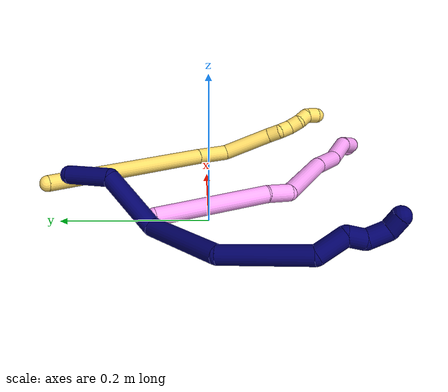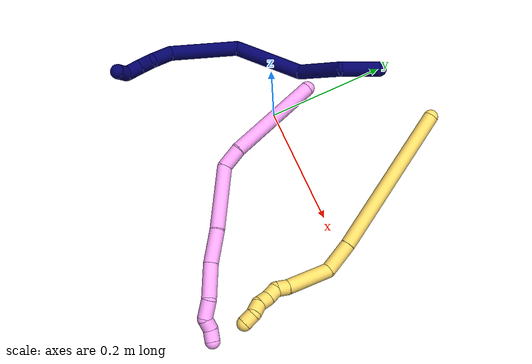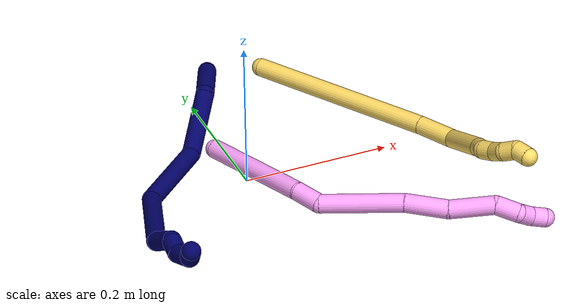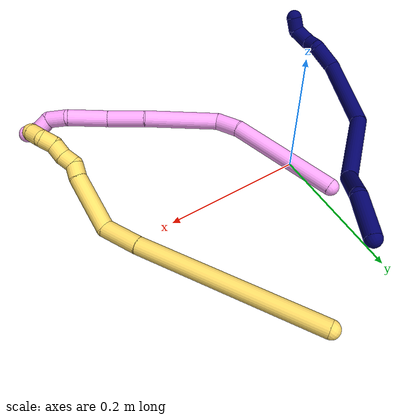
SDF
<sdf version="1.7">
 <world name="default">
  <model name="photoneo_s_sensor">
   <static>1</static>
   <pose>0 0 2 1.57079 1.57079 3.14159</pose>
   <link name="link">
    <inertial><mass>0.1</mass></inertial>
    <sensor name="sensor" type="depth">
     <update_rate>30</update_rate>
     <camera>
      <horizontal_fov>1.22</horizontal_fov>
      <image><width>1920</width><height>1200</height><format>B8G8R8</format></image>
      <clip><near>0.1</near><far>4</far></clip>
      <depth_camera><output>points</output></depth_camera>
     </camera>
     <plugin name="camera_plugin" filename="libgazebo_ros_depth_camera.so">
      <baseline>0.2</baseline>
      <alwaysOn>1</alwaysOn>
      <updateRate>0.0</updateRate>
      <cameraName>camera_ir</cameraName>
      <imageTopicName>/camera/color/image_raw</imageTopicName>
      <cameraInfoTopicName>/camera/color/camera_info</cameraInfoTopicName>
      <depthImageTopicName>/camera/depth/image_raw</depthImageTopicName>
      <depthImageCameraInfoTopicName>/camera/depth/camera_info</depthImageCameraInfoTopicName>
      <pointCloudTopicName>/camera/depth/points</pointCloudTopicName>
      <frameName>fr_optical</frameName>
      <pointCloudCutoff>0.1</pointCloudCutoff>
      <pointCloudCutoffMax>2.0</pointCloudCutoffMax>
      <distortionK1>0</distortionK1>
      <distortionK2>0</distortionK2>
      <distortionK3>0</distortionK3>
      <distortionT1>0</distortionT1>
      <distortionT2>0</distortionT2>
      <CxPrime>0</CxPrime>
      <Cx>0</Cx>
      <Cy>0</Cy>
      <focalLength>0</focalLength>
      <hackBaseline>0</hackBaseline>
     </plugin>
    </sensor>
   </link>
  </model>
  <model name="bin">
   <static>1</static>
   <link name="bottom">
    <collision name="collision-bottom">
     <pose>0 0 -0.01 0 -0 0</pose>
     <geometry><box><size>0.8 0.6 0.02</size></box></geometry>
     <surface>
      <friction><ode><mu>100</mu><mu2>100</mu2></ode></friction>
      <contact><collide_bitmask>65535</collide_bitmask></contact>
     </surface>
    </collision>
   </link>
   <link name="west_wall">
    <collision name="collision-west_wall">
     <pose>-0.41 0 0.1 0 -0 0</pose>
     <geometry><box><size>0.02 0.6 0.2</size></box></geometry>
     <surface>
      <friction><ode><mu>100</mu><mu2>100</mu2></ode></friction>
      <contact><collide_bitmask>65535</collide_bitmask></contact>
     </surface>
    </collision>
   </link>
   <link name="east_wall">
    <collision name="collision-east_wall">
     <pose>0.41 0 0.1 0 -0 0</pose>
     <geometry><box><size>0.02 0.6 0.2</size></box></geometry>
     <surface>
      <friction><ode><mu>100</mu><mu2>100</mu2></ode></friction>
      <contact><collide_bitmask>65535</collide_bitmask></contact>
     </surface>
    </collision>
   </link>
   <link name="south_wall">
    <collision name="collision-south_wall">
     <pose>0 -0.31 0.1 0 -0 0</pose>
     <geometry><box><size>0.8 0.02 0.2</size></box></geometry>
     <surface>
      <friction><ode><mu>100</mu><mu2>100</mu2></ode></friction>
      <contact><collide_bitmask>65535</collide_bitmask></contact>
     </surface>
    </collision>
   </link>
   <link name="north_wall">
    <collision name="collision-north_wall">
     <pose>0 0.31 0.1 0 -0 0</pose>
     <geometry><box><size>0.8 0.02 0.2</size></box></geometry>
     <surface>
      <friction><ode><mu>100</mu><mu2>100</mu2></ode></friction>
      <contact><collide_bitmask>65535</collide_bitmask></contact>
     </surface>
    </collision>
   </link>
  </model>
  <model name="4">
   <static>0</static>
   <link name="4">
    <collision name="collision-cylinder-e_1_1_4">
     <pose>0.076111 0.023106 -0.017977 -2.23198 1.2036 -1.90411</pose>
     <geometry><cylinder><radius>0.0125</radius><length>0.163094</length></cylinder></geometry>
     <surface>
      <friction><ode><mu>1.16</mu><mu2>1.16</mu2><slip1>0</slip1><slip2>0</slip2></ode></friction>
      <contact><ode><kp>1e+06</kp><kd>1</kd><max_vel>0</max_vel><min_depth>0.001</min_depth></ode></contact>
     </surface>
    </collision>
    <visual name="visual-cylinder-e_1_1_4">
     <pose>0.076111 0.023106 -0.017977 -2.23198 1.2036 -1.90411</pose>
     <geometry><cylinder><radius>0.0125</radius><length>0.163094</length></cylinder></geometry>
     <material><ambient>1 0.65098 0.996078 1</ambient></material>
    </visual>
    <collision name="collision-cylinder-e_2_4_5">
     <pose>0.168482 0.055141 -0.038674 -1.86653 1.0497 -1.32697</pose>
     <geometry><cylinder><radius>0.0125</radius><length>0.037498</length></cylinder></geometry>
     <surface>
      <friction><ode><mu>1.16</mu><mu2>1.16</mu2><slip1>0</slip1><slip2>0</slip2></ode></friction>
      <contact><ode><kp>1e+06</kp><kd>1</kd><max_vel>0</max_vel><min_depth>0.001</min_depth></ode></contact>
     </surface>
    </collision>
    <visual name="visual-cylinder-e_2_4_5">
     <pose>0.168482 0.055141 -0.038674 -1.86653 1.0497 -1.32697</pose>
     <geometry><cylinder><radius>0.0125</radius><length>0.037498</length></cylinder></geometry>
     <material><ambient>1 0.65098 0.996078 1</ambient></material>
    </visual>
    <collision name="collision-cylinder-e_3_5_6">
     <pose>0.228763 0.086405 -0.01652 -0.731683 0.921288 -0.375731</pose>
     <geometry><cylinder><radius>0.0125</radius><length>0.110552</length></cylinder></geometry>
     <surface>
      <friction><ode><mu>1.16</mu><mu2>1.16</mu2><slip1>0</slip1><slip2>0</slip2></ode></friction>
      <contact><ode><kp>1e+06</kp><kd>1</kd><max_vel>0</max_vel><min_depth>0.001</min_depth></ode></contact>
     </surface>
    </collision>
    <visual name="visual-cylinder-e_3_5_6">
     <pose>0.228763 0.086405 -0.01652 -0.731683 0.921288 -0.375731</pose>
     <geometry><cylinder><radius>0.0125</radius><length>0.110552</length></cylinder></geometry>
     <material><ambient>1 0.65098 0.996078 1</ambient></material>
    </visual>
    <collision name="collision-cylinder-e_4_6_7">
     <pose>0.295157 0.12368 0.018154 -0.99023 0.896921 -0.508387</pose>
     <geometry><cylinder><radius>0.0125</radius><length>0.057262</length></cylinder></geometry>
     <surface>
      <friction><ode><mu>1.16</mu><mu2>1.16</mu2><slip1>0</slip1><slip2>0</slip2></ode></friction>
      <contact><ode><kp>1e+06</kp><kd>1</kd><max_vel>0</max_vel><min_depth>0.001</min_depth></ode></contact>
     </surface>
    </collision>
    <visual name="visual-cylinder-e_4_6_7">
     <pose>0.295157 0.12368 0.018154 -0.99023 0.896921 -0.508387</pose>
     <geometry><cylinder><radius>0.0125</radius><length>0.057262</length></cylinder></geometry>
     <material><ambient>1 0.65098 0.996078 1</ambient></material>
    </visual>
    <collision name="collision-cylinder-e_5_7_8">
     <pose>0.340907 0.149239 0.043586 -0.596738 0.890948 -0.291616</pose>
     <geometry><cylinder><radius>0.0125</radius><length>0.060124</length></cylinder></geometry>
     <surface>
      <friction><ode><mu>1.16</mu><mu2>1.16</mu2><slip1>0</slip1><slip2>0</slip2></ode></friction>
      <contact><ode><kp>1e+06</kp><kd>1</kd><max_vel>0</max_vel><min_depth>0.001</min_depth></ode></contact>
     </surface>
    </collision>
    <visual name="visual-cylinder-e_5_7_8">
     <pose>0.340907 0.149239 0.043586 -0.596738 0.890948 -0.291616</pose>
     <geometry><cylinder><radius>0.0125</radius><length>0.060124</length></cylinder></geometry>
     <material><ambient>1 0.65098 0.996078 1</ambient></material>
    </visual>
    <collision name="collision-cylinder-e_6_8_9">
     <pose>0.375247 0.170398 0.062882 -1.23631 0.776582 -0.566159</pose>
     <geometry><cylinder><radius>0.0125</radius><length>0.031281</length></cylinder></geometry>
     <surface>
      <friction><ode><mu>1.16</mu><mu2>1.16</mu2><slip1>0</slip1><slip2>0</slip2></ode></friction>
      <contact><ode><kp>1e+06</kp><kd>1</kd><max_vel>0</max_vel><min_depth>0.001</min_depth></ode></contact>
     </surface>
    </collision>
    <visual name="visual-cylinder-e_6_8_9">
     <pose>0.375247 0.170398 0.062882 -1.23631 0.776582 -0.566159</pose>
     <geometry><cylinder><radius>0.0125</radius><length>0.031281</length></cylinder></geometry>
     <material><ambient>1 0.65098 0.996078 1</ambient></material>
    </visual>
    <collision name="collision-cylinder-e_7_9_10">
     <pose>0.387159 0.188953 0.072543 -0.92843 0.094569 -0.047378</pose>
     <geometry><cylinder><radius>0.0125</radius><length>0.020114</length></cylinder></geometry>
     <surface>
      <friction><ode><mu>1.16</mu><mu2>1.16</mu2><slip1>0</slip1><slip2>0</slip2></ode></friction>
      <contact><ode><kp>1e+06</kp><kd>1</kd><max_vel>0</max_vel><min_depth>0.001</min_depth></ode></contact>
     </surface>
    </collision>
    <visual name="visual-cylinder-e_7_9_10">
     <pose>0.387159 0.188953 0.072543 -0.92843 0.094569 -0.047378</pose>
     <geometry><cylinder><radius>0.0125</radius><length>0.020114</length></cylinder></geometry>
     <material><ambient>1 0.65098 0.996078 1</ambient></material>
    </visual>
    <collision name="collision-cylinder-e_8_10_2">
     <pose>0.393216 0.203488 0.084213 -0.854757 0.533833 -0.247803</pose>
     <geometry><cylinder><radius>0.0125</radius><length>0.020075</length></cylinder></geometry>
     <surface>
      <friction><ode><mu>1.16</mu><mu2>1.16</mu2><slip1>0</slip1><slip2>0</slip2></ode></friction>
      <contact><ode><kp>1e+06</kp><kd>1</kd><max_vel>0</max_vel><min_depth>0.001</min_depth></ode></contact>
     </surface>
    </collision>
    <visual name="visual-cylinder-e_8_10_2">
     <pose>0.393216 0.203488 0.084213 -0.854757 0.533833 -0.247803</pose>
     <geometry><cylinder><radius>0.0125</radius><length>0.020075</length></cylinder></geometry>
     <material><ambient>1 0.65098 0.996078 1</ambient></material>
    </visual>
    <collision name="collision-sphere-2">
     <pose>0.398323 0.210007 0.089885 0 -0 0</pose>
     <geometry><sphere><radius>0.0125</radius></sphere></geometry>
     <surface>
      <friction><ode><mu>1.16</mu><mu2>1.16</mu2><slip1>0</slip1><slip2>0</slip2></ode></friction>
      <contact><ode><kp>1e+06</kp><kd>1</kd><max_vel>0</max_vel><min_depth>0.001</min_depth></ode></contact>
     </surface>
    </collision>
    <visual name="visual-sphere-2">
     <pose>0.398323 0.210007 0.089885 0 -0 0</pose>
     <geometry><sphere><radius>0.0125</radius></sphere></geometry>
     <material><ambient>1 0.65098 0.996078 1</ambient></material>
    </visual>
    <collision name="collision-sphere-10">
     <pose>0.388108 0.196969 0.078541 0 -0 0</pose>
     <geometry><sphere><radius>0.0125</radius></sphere></geometry>
     <surface>
      <friction><ode><mu>1.16</mu><mu2>1.16</mu2><slip1>0</slip1><slip2>0</slip2></ode></friction>
      <contact><ode><kp>1e+06</kp><kd>1</kd><max_vel>0</max_vel><min_depth>0.001</min_depth></ode></contact>
     </surface>
    </collision>
    <visual name="visual-sphere-10">
     <pose>0.388108 0.196969 0.078541 0 -0 0</pose>
     <geometry><sphere><radius>0.0125</radius></sphere></geometry>
     <material><ambient>1 0.65098 0.996078 1</ambient></material>
    </visual>
    <collision name="collision-sphere-9">
     <pose>0.386209 0.180936 0.066544 0 -0 0</pose>
     <geometry><sphere><radius>0.0125</radius></sphere></geometry>
     <surface>
      <friction><ode><mu>1.16</mu><mu2>1.16</mu2><slip1>0</slip1><slip2>0</slip2></ode></friction>
      <contact><ode><kp>1e+06</kp><kd>1</kd><max_vel>0</max_vel><min_depth>0.001</min_depth></ode></contact>
     </surface>
    </collision>
    <visual name="visual-sphere-9">
     <pose>0.386209 0.180936 0.066544 0 -0 0</pose>
     <geometry><sphere><radius>0.0125</radius></sphere></geometry>
     <material><ambient>1 0.65098 0.996078 1</ambient></material>
    </visual>
    <collision name="collision-sphere-4">
     <pose>0.152222 0.046212 -0.035953 0 -0 0</pose>
     <geometry><sphere><radius>0.0125</radius></sphere></geometry>
     <surface>
      <friction><ode><mu>1.16</mu><mu2>1.16</mu2><slip1>0</slip1><slip2>0</slip2></ode></friction>
      <contact><ode><kp>1e+06</kp><kd>1</kd><max_vel>0</max_vel><min_depth>0.001</min_depth></ode></contact>
     </surface>
    </collision>
    <visual name="visual-sphere-4">
     <pose>0.152222 0.046212 -0.035953 0 -0 0</pose>
     <geometry><sphere><radius>0.0125</radius></sphere></geometry>
     <material><ambient>1 0.65098 0.996078 1</ambient></material>
    </visual>
    <collision name="collision-sphere-1">
     <geometry><sphere><radius>0.0125</radius></sphere></geometry>
     <surface>
      <friction><ode><mu>1.16</mu><mu2>1.16</mu2><slip1>0</slip1><slip2>0</slip2></ode></friction>
      <contact><ode><kp>1e+06</kp><kd>1</kd><max_vel>0</max_vel><min_depth>0.001</min_depth></ode></contact>
     </surface>
    </collision>
    <visual name="visual-sphere-1">
     <geometry><sphere><radius>0.0125</radius></sphere></geometry>
     <material><ambient>1 0.65098 0.996078 1</ambient></material>
    </visual>
    <collision name="collision-sphere-8">
     <pose>0.364285 0.15986 0.059219 0 -0 0</pose>
     <geometry><sphere><radius>0.0125</radius></sphere></geometry>
     <surface>
      <friction><ode><mu>1.16</mu><mu2>1.16</mu2><slip1>0</slip1><slip2>0</slip2></ode></friction>
      <contact><ode><kp>1e+06</kp><kd>1</kd><max_vel>0</max_vel><min_depth>0.001</min_depth></ode></contact>
     </surface>
    </collision>
    <visual name="visual-sphere-8">
     <pose>0.364285 0.15986 0.059219 0 -0 0</pose>
     <geometry><sphere><radius>0.0125</radius></sphere></geometry>
     <material><ambient>1 0.65098 0.996078 1</ambient></material>
    </visual>
    <collision name="collision-sphere-5">
     <pose>0.184743 0.06407 -0.041394 0 -0 0</pose>
     <geometry><sphere><radius>0.0125</radius></sphere></geometry>
     <surface>
      <friction><ode><mu>1.16</mu><mu2>1.16</mu2><slip1>0</slip1><slip2>0</slip2></ode></friction>
      <contact><ode><kp>1e+06</kp><kd>1</kd><max_vel>0</max_vel><min_depth>0.001</min_depth></ode></contact>
     </surface>
    </collision>
    <visual name="visual-sphere-5">
     <pose>0.184743 0.06407 -0.041394 0 -0 0</pose>
     <geometry><sphere><radius>0.0125</radius></sphere></geometry>
     <material><ambient>1 0.65098 0.996078 1</ambient></material>
    </visual>
    <collision name="collision-sphere-6">
     <pose>0.272784 0.108741 0.008354 0 -0 0</pose>
     <geometry><sphere><radius>0.0125</radius></sphere></geometry>
     <surface>
      <friction><ode><mu>1.16</mu><mu2>1.16</mu2><slip1>0</slip1><slip2>0</slip2></ode></friction>
      <contact><ode><kp>1e+06</kp><kd>1</kd><max_vel>0</max_vel><min_depth>0.001</min_depth></ode></contact>
     </surface>
    </collision>
    <visual name="visual-sphere-6">
     <pose>0.272784 0.108741 0.008354 0 -0 0</pose>
     <geometry><sphere><radius>0.0125</radius></sphere></geometry>
     <material><ambient>1 0.65098 0.996078 1</ambient></material>
    </visual>
    <collision name="collision-sphere-7">
     <pose>0.317529 0.138619 0.027953 0 -0 0</pose>
     <geometry><sphere><radius>0.0125</radius></sphere></geometry>
     <surface>
      <friction><ode><mu>1.16</mu><mu2>1.16</mu2><slip1>0</slip1><slip2>0</slip2></ode></friction>
      <contact><ode><kp>1e+06</kp><kd>1</kd><max_vel>0</max_vel><min_depth>0.001</min_depth></ode></contact>
     </surface>
    </collision>
    <visual name="visual-sphere-7">
     <pose>0.317529 0.138619 0.027953 0 -0 0</pose>
     <geometry><sphere><radius>0.0125</radius></sphere></geometry>
     <material><ambient>1 0.65098 0.996078 1</ambient></material>
    </visual>
    <inertial>
     <pose>0.217677 0.089319 0.005137 0 -0 0</pose>
     <mass>0.5</mass>
     <inertia>
      <ixx>-8.3e-05</ixx>
      <ixy>0</ixy>
      <ixz>0</ixz>
      <iyy>0.000327</iyy>
      <iyz>0</iyz>
      <izz>-0.000643</izz>
     </inertia>
    </inertial>
   </link>
   <pose>-0.015966 0.071598 0.012489 -1.2813 -0.415428 -1.10571</pose>
  </model>
  <model name="5">
   <static>0</static>
   <link name="5">
    <collision name="collision-cylinder-e_1_1_4">
     <pose>0.0559 -0.11128 0.046953 1.17152 0.43347 0.290116</pose>
     <geometry><cylinder><radius>0.0125</radius><length>0.266177</length></cylinder></geometry>
     <surface>
      <friction><ode><mu>1.16</mu><mu2>1.16</mu2><slip1>0</slip1><slip2>0</slip2></ode></friction>
      <contact><ode><kp>1e+06</kp><kd>1</kd><max_vel>0</max_vel><min_depth>0.001</min_depth></ode></contact>
     </surface>
    </collision>
    <visual name="visual-cylinder-e_1_1_4">
     <pose>0.0559 -0.11128 0.046953 1.17152 0.43347 0.290116</pose>
     <geometry><cylinder><radius>0.0125</radius><length>0.266177</length></cylinder></geometry>
     <material><ambient>1 0.858824 0.4 1</ambient></material>
    </visual>
    <collision name="collision-cylinder-e_2_4_5">
     <pose>0.124491 -0.244626 0.101841 1.22559 0.496058 0.352411</pose>
     <geometry><cylinder><radius>0.0125</radius><length>0.053328</length></cylinder></geometry>
     <surface>
      <friction><ode><mu>1.16</mu><mu2>1.16</mu2><slip1>0</slip1><slip2>0</slip2></ode></friction>
      <contact><ode><kp>1e+06</kp><kd>1</kd><max_vel>0</max_vel><min_depth>0.001</min_depth></ode></contact>
     </surface>
    </collision>
    <visual name="visual-cylinder-e_2_4_5">
     <pose>0.124491 -0.244626 0.101841 1.22559 0.496058 0.352411</pose>
     <geometry><cylinder><radius>0.0125</radius><length>0.053328</length></cylinder></geometry>
     <material><ambient>1 0.858824 0.4 1</ambient></material>
    </visual>
    <collision name="collision-cylinder-e_3_5_6">
     <pose>0.155409 -0.300595 0.098327 1.89647 0.471114 0.645388</pose>
     <geometry><cylinder><radius>0.0125</radius><length>0.080316</length></cylinder></geometry>
     <surface>
      <friction><ode><mu>1.16</mu><mu2>1.16</mu2><slip1>0</slip1><slip2>0</slip2></ode></friction>
      <contact><ode><kp>1e+06</kp><kd>1</kd><max_vel>0</max_vel><min_depth>0.001</min_depth></ode></contact>
     </surface>
    </collision>
    <visual name="visual-cylinder-e_3_5_6">
     <pose>0.155409 -0.300595 0.098327 1.89647 0.471114 0.645388</pose>
     <geometry><cylinder><radius>0.0125</radius><length>0.080316</length></cylinder></geometry>
     <material><ambient>1 0.858824 0.4 1</ambient></material>
    </visual>
    <collision name="collision-cylinder-e_4_6_7">
     <pose>0.178676 -0.341838 0.082318 2.12671 0.527947 0.904956</pose>
     <geometry><cylinder><radius>0.0125</radius><length>0.020009</length></cylinder></geometry>
     <surface>
      <friction><ode><mu>1.16</mu><mu2>1.16</mu2><slip1>0</slip1><slip2>0</slip2></ode></friction>
      <contact><ode><kp>1e+06</kp><kd>1</kd><max_vel>0</max_vel><min_depth>0.001</min_depth></ode></contact>
     </surface>
    </collision>
    <visual name="visual-cylinder-e_4_6_7">
     <pose>0.178676 -0.341838 0.082318 2.12671 0.527947 0.904956</pose>
     <geometry><cylinder><radius>0.0125</radius><length>0.020009</length></cylinder></geometry>
     <material><ambient>1 0.858824 0.4 1</ambient></material>
    </visual>
    <collision name="collision-cylinder-e_5_7_8">
     <pose>0.187149 -0.358567 0.078731 1.46748 0.348894 0.315185</pose>
     <geometry><cylinder><radius>0.0125</radius><length>0.020088</length></cylinder></geometry>
     <surface>
      <friction><ode><mu>1.16</mu><mu2>1.16</mu2><slip1>0</slip1><slip2>0</slip2></ode></friction>
      <contact><ode><kp>1e+06</kp><kd>1</kd><max_vel>0</max_vel><min_depth>0.001</min_depth></ode></contact>
     </surface>
    </collision>
    <visual name="visual-cylinder-e_5_7_8">
     <pose>0.187149 -0.358567 0.078731 1.46748 0.348894 0.315185</pose>
     <geometry><cylinder><radius>0.0125</radius><length>0.020088</length></cylinder></geometry>
     <material><ambient>1 0.858824 0.4 1</ambient></material>
    </visual>
    <collision name="collision-cylinder-e_6_8_9">
     <pose>0.193526 -0.377348 0.077755 1.77544 0.297733 0.364511</pose>
     <geometry><cylinder><radius>0.0125</radius><length>0.020067</length></cylinder></geometry>
     <surface>
      <friction><ode><mu>1.16</mu><mu2>1.16</mu2><slip1>0</slip1><slip2>0</slip2></ode></friction>
      <contact><ode><kp>1e+06</kp><kd>1</kd><max_vel>0</max_vel><min_depth>0.001</min_depth></ode></contact>
     </surface>
    </collision>
    <visual name="visual-cylinder-e_6_8_9">
     <pose>0.193526 -0.377348 0.077755 1.77544 0.297733 0.364511</pose>
     <geometry><cylinder><radius>0.0125</radius><length>0.020067</length></cylinder></geometry>
     <material><ambient>1 0.858824 0.4 1</ambient></material>
    </visual>
    <collision name="collision-cylinder-e_7_9_10">
     <pose>0.196993 -0.396586 0.077503 1.40006 0.052326 0.044079</pose>
     <geometry><cylinder><radius>0.0125</radius><length>0.02001</length></cylinder></geometry>
     <surface>
      <friction><ode><mu>1.16</mu><mu2>1.16</mu2><slip1>0</slip1><slip2>0</slip2></ode></friction>
      <contact><ode><kp>1e+06</kp><kd>1</kd><max_vel>0</max_vel><min_depth>0.001</min_depth></ode></contact>
     </surface>
    </collision>
    <visual name="visual-cylinder-e_7_9_10">
     <pose>0.196993 -0.396586 0.077503 1.40006 0.052326 0.044079</pose>
     <geometry><cylinder><radius>0.0125</radius><length>0.02001</length></cylinder></geometry>
     <material><ambient>1 0.858824 0.4 1</ambient></material>
    </visual>
    <collision name="collision-cylinder-e_8_10_2">
     <pose>0.20342 -0.414101 0.081726 1.25266 0.631296 0.464036</pose>
     <geometry><cylinder><radius>0.0125</radius><length>0.020006</length></cylinder></geometry>
     <surface>
      <friction><ode><mu>1.16</mu><mu2>1.16</mu2><slip1>0</slip1><slip2>0</slip2></ode></friction>
      <contact><ode><kp>1e+06</kp><kd>1</kd><max_vel>0</max_vel><min_depth>0.001</min_depth></ode></contact>
     </surface>
    </collision>
    <visual name="visual-cylinder-e_8_10_2">
     <pose>0.20342 -0.414101 0.081726 1.25266 0.631296 0.464036</pose>
     <geometry><cylinder><radius>0.0125</radius><length>0.020006</length></cylinder></geometry>
     <material><ambient>1 0.858824 0.4 1</ambient></material>
    </visual>
    <collision name="collision-sphere-2">
     <pose>0.209323 -0.421771 0.084252 0 -0 0</pose>
     <geometry><sphere><radius>0.0125</radius></sphere></geometry>
     <surface>
      <friction><ode><mu>1.16</mu><mu2>1.16</mu2><slip1>0</slip1><slip2>0</slip2></ode></friction>
      <contact><ode><kp>1e+06</kp><kd>1</kd><max_vel>0</max_vel><min_depth>0.001</min_depth></ode></contact>
     </surface>
    </collision>
    <visual name="visual-sphere-2">
     <pose>0.209323 -0.421771 0.084252 0 -0 0</pose>
     <geometry><sphere><radius>0.0125</radius></sphere></geometry>
     <material><ambient>1 0.858824 0.4 1</ambient></material>
    </visual>
    <collision name="collision-sphere-10">
     <pose>0.197516 -0.406432 0.0792 0 -0 0</pose>
     <geometry><sphere><radius>0.0125</radius></sphere></geometry>
     <surface>
      <friction><ode><mu>1.16</mu><mu2>1.16</mu2><slip1>0</slip1><slip2>0</slip2></ode></friction>
      <contact><ode><kp>1e+06</kp><kd>1</kd><max_vel>0</max_vel><min_depth>0.001</min_depth></ode></contact>
     </surface>
    </collision>
    <visual name="visual-sphere-10">
     <pose>0.197516 -0.406432 0.0792 0 -0 0</pose>
     <geometry><sphere><radius>0.0125</radius></sphere></geometry>
     <material><ambient>1 0.858824 0.4 1</ambient></material>
    </visual>
    <collision name="collision-sphere-9">
     <pose>0.19647 -0.38674 0.075805 0 -0 0</pose>
     <geometry><sphere><radius>0.0125</radius></sphere></geometry>
     <surface>
      <friction><ode><mu>1.16</mu><mu2>1.16</mu2><slip1>0</slip1><slip2>0</slip2></ode></friction>
      <contact><ode><kp>1e+06</kp><kd>1</kd><max_vel>0</max_vel><min_depth>0.001</min_depth></ode></contact>
     </surface>
    </collision>
    <visual name="visual-sphere-9">
     <pose>0.19647 -0.38674 0.075805 0 -0 0</pose>
     <geometry><sphere><radius>0.0125</radius></sphere></geometry>
     <material><ambient>1 0.858824 0.4 1</ambient></material>
    </visual>
    <collision name="collision-sphere-4">
     <pose>0.1118 -0.222559 0.093906 0 -0 0</pose>
     <geometry><sphere><radius>0.0125</radius></sphere></geometry>
     <surface>
      <friction><ode><mu>1.16</mu><mu2>1.16</mu2><slip1>0</slip1><slip2>0</slip2></ode></friction>
      <contact><ode><kp>1e+06</kp><kd>1</kd><max_vel>0</max_vel><min_depth>0.001</min_depth></ode></contact>
     </surface>
    </collision>
    <visual name="visual-sphere-4">
     <pose>0.1118 -0.222559 0.093906 0 -0 0</pose>
     <geometry><sphere><radius>0.0125</radius></sphere></geometry>
     <material><ambient>1 0.858824 0.4 1</ambient></material>
    </visual>
    <collision name="collision-sphere-1">
     <geometry><sphere><radius>0.0125</radius></sphere></geometry>
     <surface>
      <friction><ode><mu>1.16</mu><mu2>1.16</mu2><slip1>0</slip1><slip2>0</slip2></ode></friction>
      <contact><ode><kp>1e+06</kp><kd>1</kd><max_vel>0</max_vel><min_depth>0.001</min_depth></ode></contact>
     </surface>
    </collision>
    <visual name="visual-sphere-1">
     <geometry><sphere><radius>0.0125</radius></sphere></geometry>
     <material><ambient>1 0.858824 0.4 1</ambient></material>
    </visual>
    <collision name="collision-sphere-8">
     <pose>0.190583 -0.367956 0.079704 0 -0 0</pose>
     <geometry><sphere><radius>0.0125</radius></sphere></geometry>
     <surface>
      <friction><ode><mu>1.16</mu><mu2>1.16</mu2><slip1>0</slip1><slip2>0</slip2></ode></friction>
      <contact><ode><kp>1e+06</kp><kd>1</kd><max_vel>0</max_vel><min_depth>0.001</min_depth></ode></contact>
     </surface>
    </collision>
    <visual name="visual-sphere-8">
     <pose>0.190583 -0.367956 0.079704 0 -0 0</pose>
     <geometry><sphere><radius>0.0125</radius></sphere></geometry>
     <material><ambient>1 0.858824 0.4 1</ambient></material>
    </visual>
    <collision name="collision-sphere-5">
     <pose>0.137182 -0.266692 0.109776 0 -0 0</pose>
     <geometry><sphere><radius>0.0125</radius></sphere></geometry>
     <surface>
      <friction><ode><mu>1.16</mu><mu2>1.16</mu2><slip1>0</slip1><slip2>0</slip2></ode></friction>
      <contact><ode><kp>1e+06</kp><kd>1</kd><max_vel>0</max_vel><min_depth>0.001</min_depth></ode></contact>
     </surface>
    </collision>
    <visual name="visual-sphere-5">
     <pose>0.137182 -0.266692 0.109776 0 -0 0</pose>
     <geometry><sphere><radius>0.0125</radius></sphere></geometry>
     <material><ambient>1 0.858824 0.4 1</ambient></material>
    </visual>
    <collision name="collision-sphere-6">
     <pose>0.173636 -0.334497 0.086878 0 -0 0</pose>
     <geometry><sphere><radius>0.0125</radius></sphere></geometry>
     <surface>
      <friction><ode><mu>1.16</mu><mu2>1.16</mu2><slip1>0</slip1><slip2>0</slip2></ode></friction>
      <contact><ode><kp>1e+06</kp><kd>1</kd><max_vel>0</max_vel><min_depth>0.001</min_depth></ode></contact>
     </surface>
    </collision>
    <visual name="visual-sphere-6">
     <pose>0.173636 -0.334497 0.086878 0 -0 0</pose>
     <geometry><sphere><radius>0.0125</radius></sphere></geometry>
     <material><ambient>1 0.858824 0.4 1</ambient></material>
    </visual>
    <collision name="collision-sphere-7">
     <pose>0.183716 -0.349178 0.077757 0 -0 0</pose>
     <geometry><sphere><radius>0.0125</radius></sphere></geometry>
     <surface>
      <friction><ode><mu>1.16</mu><mu2>1.16</mu2><slip1>0</slip1><slip2>0</slip2></ode></friction>
      <contact><ode><kp>1e+06</kp><kd>1</kd><max_vel>0</max_vel><min_depth>0.001</min_depth></ode></contact>
     </surface>
    </collision>
    <visual name="visual-sphere-7">
     <pose>0.183716 -0.349178 0.077757 0 -0 0</pose>
     <geometry><sphere><radius>0.0125</radius></sphere></geometry>
     <material><ambient>1 0.858824 0.4 1</ambient></material>
    </visual>
    <inertial>
     <pose>0.106459 -0.209286 0.067601 0 -0 0</pose>
     <mass>0.5</mass>
     <inertia>
      <ixx>0.001885</ixx>
      <ixy>0</ixy>
      <ixz>0</ixz>
      <iyy>0.001182</iyy>
      <iyz>0</iyz>
      <izz>0.000692</izz>
     </inertia>
    </inertial>
   </link>
   <pose>0.120999 0.240384 0.012726 -2.41812 0.609472 -2.05439</pose>
  </model>
  <model name="7">
   <static>0</static>
   <link name="7">
    <collision name="collision-cylinder-e_1_1_4">
     <pose>-0.008613 -0.001041 0.030577 0.034038 -0.274426 -0.0047</pose>
     <geometry><cylinder><radius>0.0125</radius><length>0.063568</length></cylinder></geometry>
     <surface>
      <friction><ode><mu>1.16</mu><mu2>1.16</mu2><slip1>0</slip1><slip2>0</slip2></ode></friction>
      <contact><ode><kp>1e+06</kp><kd>1</kd><max_vel>0</max_vel><min_depth>0.001</min_depth></ode></contact>
     </surface>
    </collision>
    <visual name="visual-cylinder-e_1_1_4">
     <pose>-0.008613 -0.001041 0.030577 0.034038 -0.274426 -0.0047</pose>
     <geometry><cylinder><radius>0.0125</radius><length>0.063568</length></cylinder></geometry>
     <material><ambient>0.003922 0 0.403922 1</ambient></material>
    </visual>
    <collision name="collision-cylinder-e_2_4_5">
     <pose>-0.045181 -0.024729 0.086782 0.723708 -0.685255 -0.268411</pose>
     <geometry><cylinder><radius>0.0125</radius><length>0.088343</length></cylinder></geometry>
     <surface>
      <friction><ode><mu>1.16</mu><mu2>1.16</mu2><slip1>0</slip1><slip2>0</slip2></ode></friction>
      <contact><ode><kp>1e+06</kp><kd>1</kd><max_vel>0</max_vel><min_depth>0.001</min_depth></ode></contact>
     </surface>
    </collision>
    <visual name="visual-cylinder-e_2_4_5">
     <pose>-0.045181 -0.024729 0.086782 0.723708 -0.685255 -0.268411</pose>
     <geometry><cylinder><radius>0.0125</radius><length>0.088343</length></cylinder></geometry>
     <material><ambient>0.003922 0 0.403922 1</ambient></material>
    </visual>
    <collision name="collision-cylinder-e_3_5_6">
     <pose>-0.109395 -0.041928 0.158694 -0.117144 -0.661196 0.040244</pose>
     <geometry><cylinder><radius>0.0125</radius><length>0.118096</length></cylinder></geometry>
     <surface>
      <friction><ode><mu>1.16</mu><mu2>1.16</mu2><slip1>0</slip1><slip2>0</slip2></ode></friction>
      <contact><ode><kp>1e+06</kp><kd>1</kd><max_vel>0</max_vel><min_depth>0.001</min_depth></ode></contact>
     </surface>
    </collision>
    <visual name="visual-cylinder-e_3_5_6">
     <pose>-0.109395 -0.041928 0.158694 -0.117144 -0.661196 0.040244</pose>
     <geometry><cylinder><radius>0.0125</radius><length>0.118096</length></cylinder></geometry>
     <material><ambient>0.003922 0 0.403922 1</ambient></material>
    </visual>
    <collision name="collision-cylinder-e_4_6_7">
     <pose>-0.154188 -0.038351 0.262602 0.032447 -0.146944 -0.002388</pose>
     <geometry><cylinder><radius>0.0125</radius><length>0.116562</length></cylinder></geometry>
     <surface>
      <friction><ode><mu>1.16</mu><mu2>1.16</mu2><slip1>0</slip1><slip2>0</slip2></ode></friction>
      <contact><ode><kp>1e+06</kp><kd>1</kd><max_vel>0</max_vel><min_depth>0.001</min_depth></ode></contact>
     </surface>
    </collision>
    <visual name="visual-cylinder-e_4_6_7">
     <pose>-0.154188 -0.038351 0.262602 0.032447 -0.146944 -0.002388</pose>
     <geometry><cylinder><radius>0.0125</radius><length>0.116562</length></cylinder></geometry>
     <material><ambient>0.003922 0 0.403922 1</ambient></material>
    </visual>
    <collision name="collision-cylinder-e_5_7_8">
     <pose>-0.153498 -0.037117 0.337895 -0.173911 0.474856 -0.042185</pose>
     <geometry><cylinder><radius>0.0125</radius><length>0.040346</length></cylinder></geometry>
     <surface>
      <friction><ode><mu>1.16</mu><mu2>1.16</mu2><slip1>0</slip1><slip2>0</slip2></ode></friction>
      <contact><ode><kp>1e+06</kp><kd>1</kd><max_vel>0</max_vel><min_depth>0.001</min_depth></ode></contact>
     </surface>
    </collision>
    <visual name="visual-cylinder-e_5_7_8">
     <pose>-0.153498 -0.037117 0.337895 -0.173911 0.474856 -0.042185</pose>
     <geometry><cylinder><radius>0.0125</radius><length>0.040346</length></cylinder></geometry>
     <material><ambient>0.003922 0 0.403922 1</ambient></material>
    </visual>
    <collision name="collision-cylinder-e_6_8_9">
     <pose>-0.1447 -0.038839 0.365806 0.440407 -0.037581 -0.008413</pose>
     <geometry><cylinder><radius>0.0125</radius><length>0.022657</length></cylinder></geometry>
     <surface>
      <friction><ode><mu>1.16</mu><mu2>1.16</mu2><slip1>0</slip1><slip2>0</slip2></ode></friction>
      <contact><ode><kp>1e+06</kp><kd>1</kd><max_vel>0</max_vel><min_depth>0.001</min_depth></ode></contact>
     </surface>
    </collision>
    <visual name="visual-cylinder-e_6_8_9">
     <pose>-0.1447 -0.038839 0.365806 0.440407 -0.037581 -0.008413</pose>
     <geometry><cylinder><radius>0.0125</radius><length>0.022657</length></cylinder></geometry>
     <material><ambient>0.003922 0 0.403922 1</ambient></material>
    </visual>
    <collision name="collision-cylinder-e_7_9_10">
     <pose>-0.139531 -0.044434 0.389373 0.057668 0.396839 0.011598</pose>
     <geometry><cylinder><radius>0.0125</radius><length>0.028947</length></cylinder></geometry>
     <surface>
      <friction><ode><mu>1.16</mu><mu2>1.16</mu2><slip1>0</slip1><slip2>0</slip2></ode></friction>
      <contact><ode><kp>1e+06</kp><kd>1</kd><max_vel>0</max_vel><min_depth>0.001</min_depth></ode></contact>
     </surface>
    </collision>
    <visual name="visual-cylinder-e_7_9_10">
     <pose>-0.139531 -0.044434 0.389373 0.057668 0.396839 0.011598</pose>
     <geometry><cylinder><radius>0.0125</radius><length>0.028947</length></cylinder></geometry>
     <material><ambient>0.003922 0 0.403922 1</ambient></material>
    </visual>
    <collision name="collision-cylinder-e_8_10_2">
     <pose>-0.130953 -0.038517 0.410557 -0.70502 0.281615 -0.104195</pose>
     <geometry><cylinder><radius>0.0125</radius><length>0.02148</length></cylinder></geometry>
     <surface>
      <friction><ode><mu>1.16</mu><mu2>1.16</mu2><slip1>0</slip1><slip2>0</slip2></ode></friction>
      <contact><ode><kp>1e+06</kp><kd>1</kd><max_vel>0</max_vel><min_depth>0.001</min_depth></ode></contact>
     </surface>
    </collision>
    <visual name="visual-cylinder-e_8_10_2">
     <pose>-0.130953 -0.038517 0.410557 -0.70502 0.281615 -0.104195</pose>
     <geometry><cylinder><radius>0.0125</radius><length>0.02148</length></cylinder></geometry>
     <material><ambient>0.003922 0 0.403922 1</ambient></material>
    </visual>
    <collision name="collision-sphere-2">
     <pose>-0.127968 -0.031831 0.418415 0 -0 0</pose>
     <geometry><sphere><radius>0.0125</radius></sphere></geometry>
     <surface>
      <friction><ode><mu>1.16</mu><mu2>1.16</mu2><slip1>0</slip1><slip2>0</slip2></ode></friction>
      <contact><ode><kp>1e+06</kp><kd>1</kd><max_vel>0</max_vel><min_depth>0.001</min_depth></ode></contact>
     </surface>
    </collision>
    <visual name="visual-sphere-2">
     <pose>-0.127968 -0.031831 0.418415 0 -0 0</pose>
     <geometry><sphere><radius>0.0125</radius></sphere></geometry>
     <material><ambient>0.003922 0 0.403922 1</ambient></material>
    </visual>
    <collision name="collision-sphere-10">
     <pose>-0.133937 -0.045204 0.4027 0 -0 0</pose>
     <geometry><sphere><radius>0.0125</radius></sphere></geometry>
     <surface>
      <friction><ode><mu>1.16</mu><mu2>1.16</mu2><slip1>0</slip1><slip2>0</slip2></ode></friction>
      <contact><ode><kp>1e+06</kp><kd>1</kd><max_vel>0</max_vel><min_depth>0.001</min_depth></ode></contact>
     </surface>
    </collision>
    <visual name="visual-sphere-10">
     <pose>-0.133937 -0.045204 0.4027 0 -0 0</pose>
     <geometry><sphere><radius>0.0125</radius></sphere></geometry>
     <material><ambient>0.003922 0 0.403922 1</ambient></material>
    </visual>
    <collision name="collision-sphere-9">
     <pose>-0.145126 -0.043665 0.376046 0 -0 0</pose>
     <geometry><sphere><radius>0.0125</radius></sphere></geometry>
     <surface>
      <friction><ode><mu>1.16</mu><mu2>1.16</mu2><slip1>0</slip1><slip2>0</slip2></ode></friction>
      <contact><ode><kp>1e+06</kp><kd>1</kd><max_vel>0</max_vel><min_depth>0.001</min_depth></ode></contact>
     </surface>
    </collision>
    <visual name="visual-sphere-9">
     <pose>-0.145126 -0.043665 0.376046 0 -0 0</pose>
     <geometry><sphere><radius>0.0125</radius></sphere></geometry>
     <material><ambient>0.003922 0 0.403922 1</ambient></material>
    </visual>
    <collision name="collision-sphere-4">
     <pose>-0.017227 -0.002082 0.061154 0 -0 0</pose>
     <geometry><sphere><radius>0.0125</radius></sphere></geometry>
     <surface>
      <friction><ode><mu>1.16</mu><mu2>1.16</mu2><slip1>0</slip1><slip2>0</slip2></ode></friction>
      <contact><ode><kp>1e+06</kp><kd>1</kd><max_vel>0</max_vel><min_depth>0.001</min_depth></ode></contact>
     </surface>
    </collision>
    <visual name="visual-sphere-4">
     <pose>-0.017227 -0.002082 0.061154 0 -0 0</pose>
     <geometry><sphere><radius>0.0125</radius></sphere></geometry>
     <material><ambient>0.003922 0 0.403922 1</ambient></material>
    </visual>
    <collision name="collision-sphere-1">
     <geometry><sphere><radius>0.0125</radius></sphere></geometry>
     <surface>
      <friction><ode><mu>1.16</mu><mu2>1.16</mu2><slip1>0</slip1><slip2>0</slip2></ode></friction>
      <contact><ode><kp>1e+06</kp><kd>1</kd><max_vel>0</max_vel><min_depth>0.001</min_depth></ode></contact>
     </surface>
    </collision>
    <visual name="visual-sphere-1">
     <geometry><sphere><radius>0.0125</radius></sphere></geometry>
     <material><ambient>0.003922 0 0.403922 1</ambient></material>
    </visual>
    <collision name="collision-sphere-8">
     <pose>-0.144274 -0.034013 0.355565 0 -0 0</pose>
     <geometry><sphere><radius>0.0125</radius></sphere></geometry>
     <surface>
      <friction><ode><mu>1.16</mu><mu2>1.16</mu2><slip1>0</slip1><slip2>0</slip2></ode></friction>
      <contact><ode><kp>1e+06</kp><kd>1</kd><max_vel>0</max_vel><min_depth>0.001</min_depth></ode></contact>
     </surface>
    </collision>
    <visual name="visual-sphere-8">
     <pose>-0.144274 -0.034013 0.355565 0 -0 0</pose>
     <geometry><sphere><radius>0.0125</radius></sphere></geometry>
     <material><ambient>0.003922 0 0.403922 1</ambient></material>
    </visual>
    <collision name="collision-sphere-5">
     <pose>-0.073136 -0.047375 0.11241 0 -0 0</pose>
     <geometry><sphere><radius>0.0125</radius></sphere></geometry>
     <surface>
      <friction><ode><mu>1.16</mu><mu2>1.16</mu2><slip1>0</slip1><slip2>0</slip2></ode></friction>
      <contact><ode><kp>1e+06</kp><kd>1</kd><max_vel>0</max_vel><min_depth>0.001</min_depth></ode></contact>
     </surface>
    </collision>
    <visual name="visual-sphere-5">
     <pose>-0.073136 -0.047375 0.11241 0 -0 0</pose>
     <geometry><sphere><radius>0.0125</radius></sphere></geometry>
     <material><ambient>0.003922 0 0.403922 1</ambient></material>
    </visual>
    <collision name="collision-sphere-6">
     <pose>-0.145654 -0.036481 0.204979 0 -0 0</pose>
     <geometry><sphere><radius>0.0125</radius></sphere></geometry>
     <surface>
      <friction><ode><mu>1.16</mu><mu2>1.16</mu2><slip1>0</slip1><slip2>0</slip2></ode></friction>
      <contact><ode><kp>1e+06</kp><kd>1</kd><max_vel>0</max_vel><min_depth>0.001</min_depth></ode></contact>
     </surface>
    </collision>
    <visual name="visual-sphere-6">
     <pose>-0.145654 -0.036481 0.204979 0 -0 0</pose>
     <geometry><sphere><radius>0.0125</radius></sphere></geometry>
     <material><ambient>0.003922 0 0.403922 1</ambient></material>
    </visual>
    <collision name="collision-sphere-7">
     <pose>-0.162721 -0.040222 0.320225 0 -0 0</pose>
     <geometry><sphere><radius>0.0125</radius></sphere></geometry>
     <surface>
      <friction><ode><mu>1.16</mu><mu2>1.16</mu2><slip1>0</slip1><slip2>0</slip2></ode></friction>
      <contact><ode><kp>1e+06</kp><kd>1</kd><max_vel>0</max_vel><min_depth>0.001</min_depth></ode></contact>
     </surface>
    </collision>
    <visual name="visual-sphere-7">
     <pose>-0.162721 -0.040222 0.320225 0 -0 0</pose>
     <geometry><sphere><radius>0.0125</radius></sphere></geometry>
     <material><ambient>0.003922 0 0.403922 1</ambient></material>
    </visual>
    <inertial>
     <pose>-0.103508 -0.032327 0.201944 0 -0 0</pose>
     <mass>0.5</mass>
     <inertia>
      <ixx>0.000309</ixx>
      <ixy>0</ixy>
      <ixz>0</ixz>
      <iyy>0.000354</iyy>
      <iyz>0</iyz>
      <izz>0.000202</izz>
     </inertia>
    </inertial>
   </link>
   <pose>0.020324 0.1877 0.059869 1.34056 -0.409962 -0.090522</pose>
  </model>
 </world>
</sdf>
